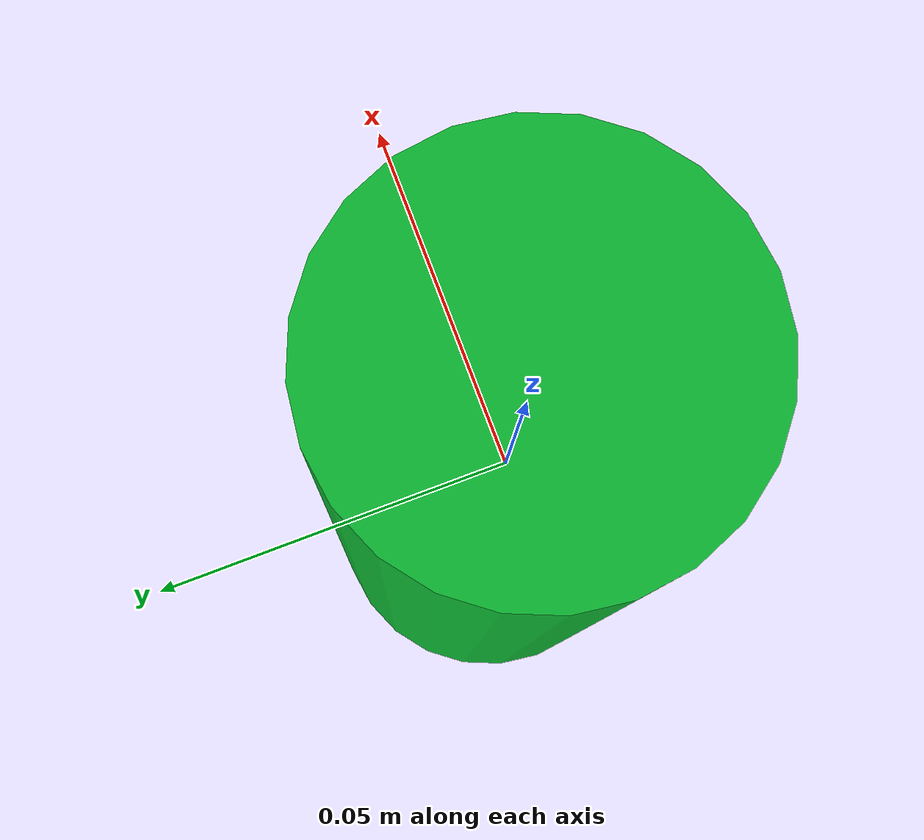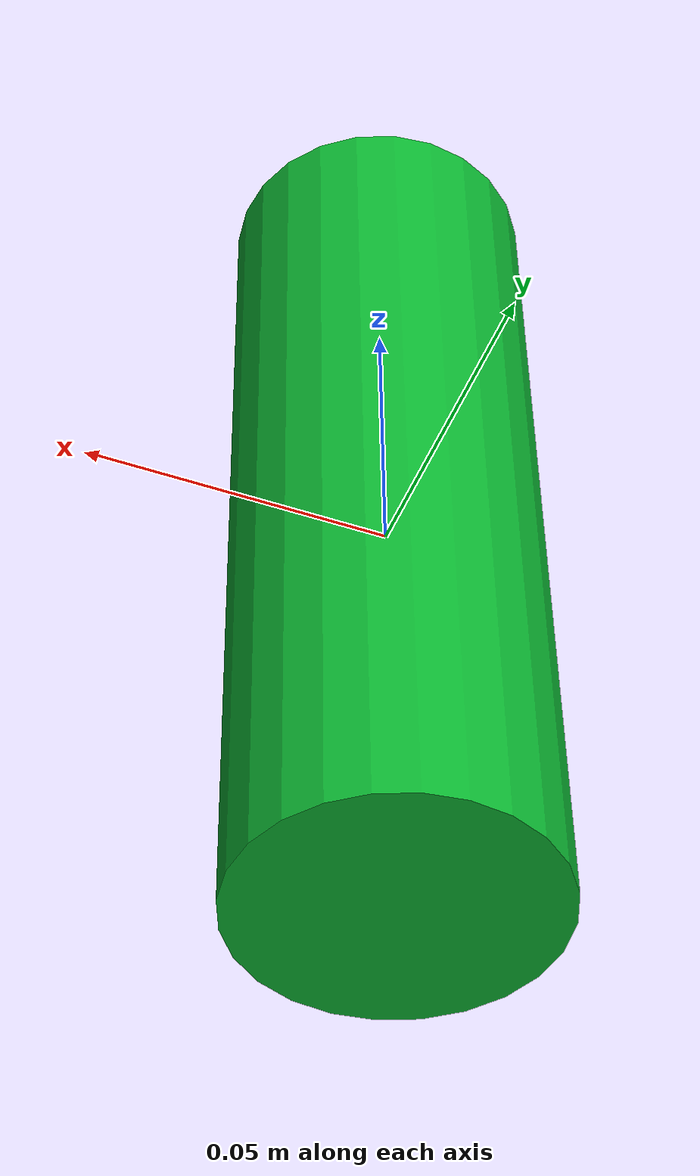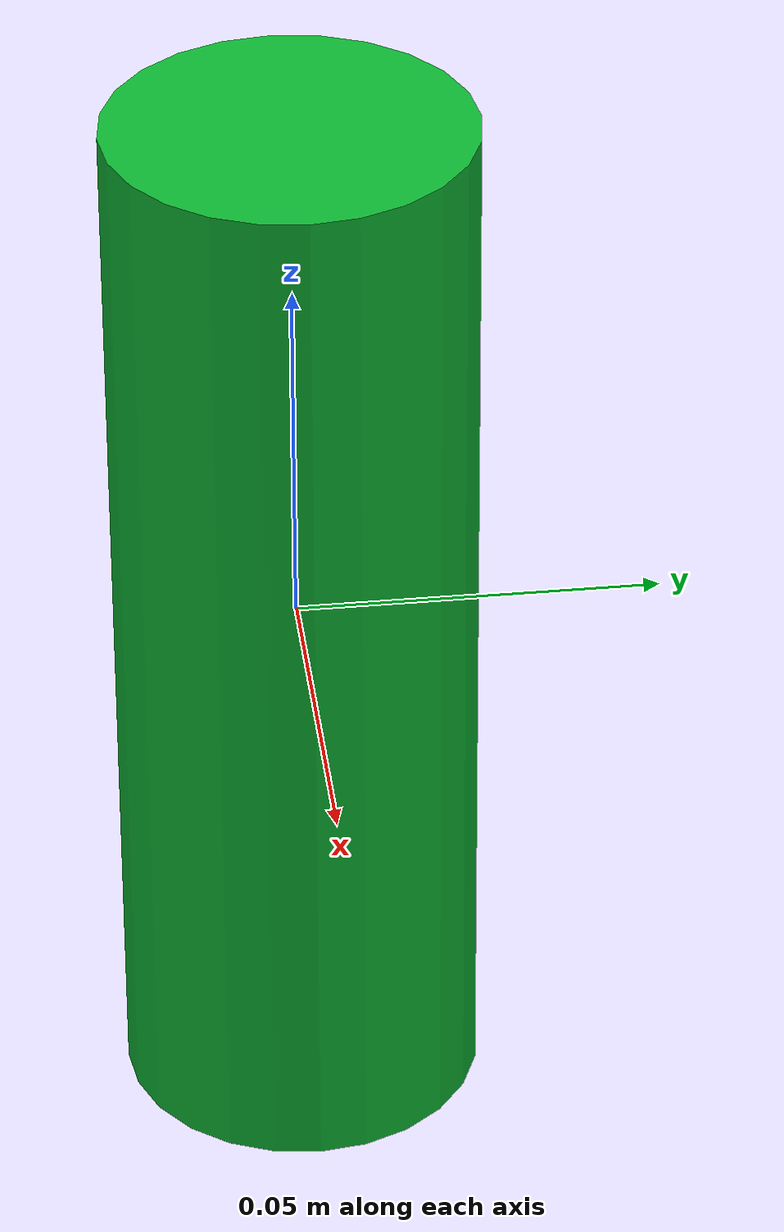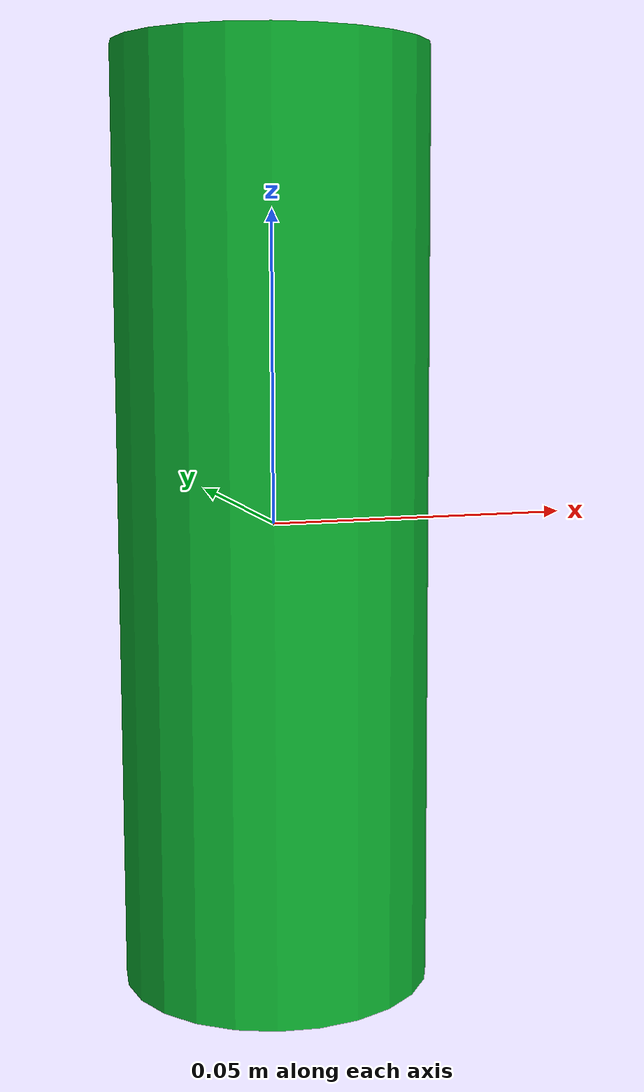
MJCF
<?xml version="1.0" encoding="utf-8"?>
<mujoco model="primitive_green_cylinder">
  <compiler angle="radian" autolimits="true"/>

  <asset>
    <material name="grasp_green_mat" rgba="0.05 0.72 0.20 1" specular="0.22" shininess="0.38" reflectance="0.02"/>
  </asset>

  <worldbody>
    <body name="object">
      <geom name="green_cylinder_visual" type="cylinder" pos="0 0 0" size="0.025 0.075"
            material="grasp_green_mat" group="1" contype="0" conaffinity="0" mass="0"/>
      <geom name="green_cylinder_collision" type="cylinder" pos="0 0 0" size="0.025 0.075"
            group="3" contype="1" conaffinity="1" condim="4" friction="1.3 0.06 0.02"
            solref="0.004 1.0" solimp="0.95 0.99 0.001" mass="0.08" rgba="0 0 0 0"/>
      <site name="grasp_site" pos="0 0 0" size="0.010" rgba="0.0 0.9 0.2 0.0"/>
      <site name="top_site" pos="0 0 0.075" size="0.008" rgba="0.0 0.9 0.2 0.0"/>
    </body>
  </worldbody>
</mujoco>
